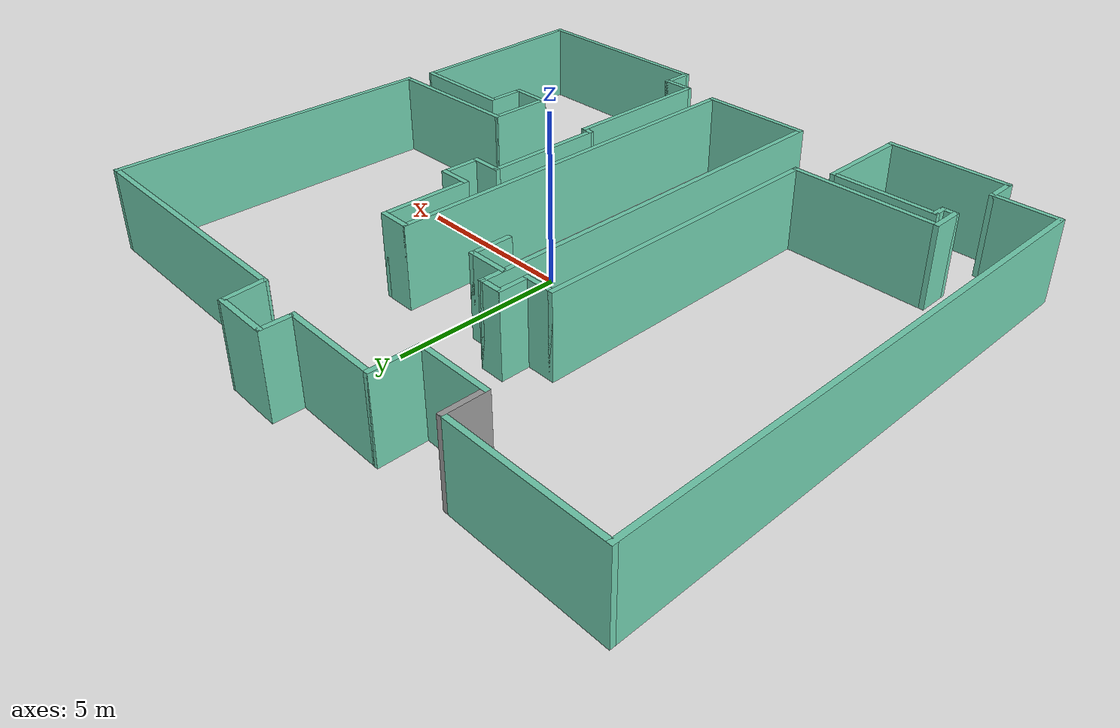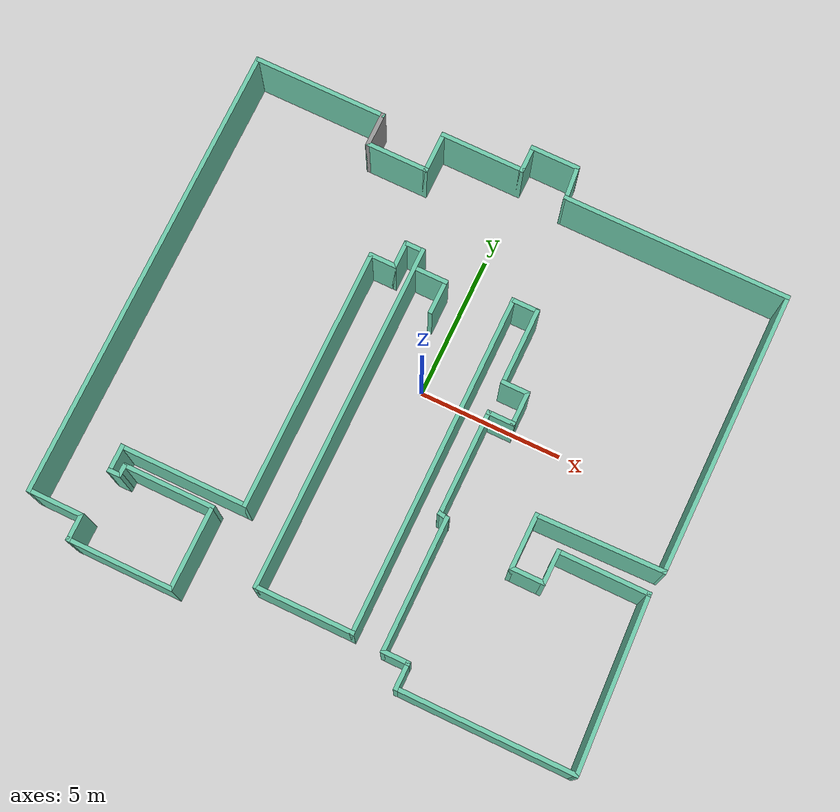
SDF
<?xml version='1.0'?>
<sdf version='1.6'>
  <model name='map_111'>
    <pose frame=''>0.024444 -0.501413 0 0 -0 0</pose>
    <link name='Wall_10'>
      <collision name='Wall_10_Collision'>
        <geometry>
          <box>
            <size>16.25 0.15 2.5</size>
          </box>
        </geometry>
        <pose frame=''>0 0 1.25 0 -0 0</pose>
      </collision>
      <visual name='Wall_10_Visual'>
        <pose frame=''>0 0 1.25 0 -0 0</pose>
        <geometry>
          <box>
            <size>16.25 0.15 2.5</size>
          </box>
        </geometry>
        <material>
          <script>
            <uri>file://media/materials/scripts/gazebo.material</uri>
            <name>Gazebo/Grey</name>
          </script>
          <ambient>0.435294 0.796078 0.67451 1</ambient>
        </material>
        <meta>
          <layer>0</layer>
        </meta>
      </visual>
      <pose frame=''>-9.60153 -0.128241 0 0 -0 -1.5708</pose>
    </link>
    <link name='Wall_15'>
      <collision name='Wall_15_Collision'>
        <geometry>
          <box>
            <size>10 0.15 2.5</size>
          </box>
        </geometry>
        <pose frame=''>0 0 1.25 0 -0 0</pose>
      </collision>
      <visual name='Wall_15_Visual'>
        <pose frame=''>0 0 1.25 0 -0 0</pose>
        <geometry>
          <box>
            <size>10 0.15 2.5</size>
          </box>
        </geometry>
        <material>
          <script>
            <uri>file://media/materials/scripts/gazebo.material</uri>
            <name>Gazebo/Grey</name>
          </script>
          <ambient>0.435294 0.796078 0.67451 1</ambient>
        </material>
        <meta>
          <layer>0</layer>
        </meta>
      </visual>
      <pose frame=''>9.49847 2.99676 0 0 -0 -1.5708</pose>
    </link>
    <link name='Wall_16'>
      <collision name='Wall_16_Collision'>
        <geometry>
          <box>
            <size>4.5 0.15 2.5</size>
          </box>
        </geometry>
        <pose frame=''>0 0 1.25 0 -0 0</pose>
      </collision>
      <visual name='Wall_16_Visual'>
        <pose frame=''>0 0 1.25 0 -0 0</pose>
        <geometry>
          <box>
            <size>4.5 0.15 2.5</size>
          </box>
        </geometry>
        <material>
          <script>
            <uri>file://media/materials/scripts/gazebo.material</uri>
            <name>Gazebo/Grey</name>
          </script>
          <ambient>0.435294 0.796078 0.67451 1</ambient>
        </material>
        <meta>
          <layer>0</layer>
        </meta>
      </visual>
      <pose frame=''>7.32347 -1.97477 0 0 -0 -3.12021</pose>
    </link>
    <link name='Wall_22'>
      <collision name='Wall_22_Collision'>
        <geometry>
          <box>
            <size>6.25 0.15 2.5</size>
          </box>
        </geometry>
        <pose frame=''>0 0 1.25 0 -0 0</pose>
      </collision>
      <visual name='Wall_22_Visual'>
        <pose frame=''>0 0 1.25 0 -0 0</pose>
        <geometry>
          <box>
            <size>6.25 0.15 2.5</size>
          </box>
        </geometry>
        <material>
          <script>
            <uri>file://media/materials/scripts/gazebo.material</uri>
            <name>Gazebo/Grey</name>
          </script>
          <ambient>0.435294 0.796078 0.67451 1</ambient>
        </material>
        <meta>
          <layer>0</layer>
        </meta>
      </visual>
      <pose frame=''>6.54847 -8.77824 0 0 -0 3.14159</pose>
    </link>
    <link name='Wall_23'>
      <collision name='Wall_23_Collision'>
        <geometry>
          <box>
            <size>1 0.15 2.5</size>
          </box>
        </geometry>
        <pose frame=''>0 0 1.25 0 -0 0</pose>
      </collision>
      <visual name='Wall_23_Visual'>
        <pose frame=''>0 0 1.25 0 -0 0</pose>
        <geometry>
          <box>
            <size>1 0.15 2.5</size>
          </box>
        </geometry>
        <material>
          <script>
            <uri>file://media/materials/scripts/gazebo.material</uri>
            <name>Gazebo/Grey</name>
          </script>
          <ambient>0.435294 0.796078 0.67451 1</ambient>
        </material>
        <meta>
          <layer>0</layer>
        </meta>
      </visual>
      <pose frame=''>3.49847 -8.35324 0 0 -0 1.5708</pose>
    </link>
    <link name='Wall_24'>
      <collision name='Wall_24_Collision'>
        <geometry>
          <box>
            <size>1 0.15 2.5</size>
          </box>
        </geometry>
        <pose frame=''>0 0 1.25 0 -0 0</pose>
      </collision>
      <visual name='Wall_24_Visual'>
        <pose frame=''>0 0 1.25 0 -0 0</pose>
        <geometry>
          <box>
            <size>1 0.15 2.5</size>
          </box>
        </geometry>
        <material>
          <script>
            <uri>file://media/materials/scripts/gazebo.material</uri>
            <name>Gazebo/Grey</name>
          </script>
          <ambient>0.435294 0.796078 0.67451 1</ambient>
        </material>
        <meta>
          <layer>0</layer>
        </meta>
      </visual>
      <pose frame=''>3.07347 -7.92824 0 0 -0 3.14159</pose>
    </link>
    <link name='Wall_25'>
      <collision name='Wall_25_Collision'>
        <geometry>
          <box>
            <size>4.75 0.15 2.5</size>
          </box>
        </geometry>
        <pose frame=''>0 0 1.25 0 -0 0</pose>
      </collision>
      <visual name='Wall_25_Visual'>
        <pose frame=''>0 0 1.25 0 -0 0</pose>
        <geometry>
          <box>
            <size>4.75 0.15 2.5</size>
          </box>
        </geometry>
        <material>
          <script>
            <uri>file://media/materials/scripts/gazebo.material</uri>
            <name>Gazebo/Grey</name>
          </script>
          <ambient>0.435294 0.796078 0.67451 1</ambient>
        </material>
        <meta>
          <layer>0</layer>
        </meta>
      </visual>
      <pose frame=''>2.64847 -5.62824 0 0 -0 1.5708</pose>
    </link>
    <link name='Wall_27'>
      <collision name='Wall_27_Collision'>
        <geometry>
          <box>
            <size>2 0.15 2.5</size>
          </box>
        </geometry>
        <pose frame=''>0 0 1.25 0 -0 0</pose>
      </collision>
      <visual name='Wall_27_Visual'>
        <pose frame=''>0 0 1.25 0 -0 0</pose>
        <geometry>
          <box>
            <size>2 0.15 2.5</size>
          </box>
        </geometry>
        <material>
          <script>
            <uri>file://media/materials/scripts/gazebo.material</uri>
            <name>Gazebo/Grey</name>
          </script>
          <ambient>0.435294 0.796078 0.67451 1</ambient>
        </material>
        <meta>
          <layer>0</layer>
        </meta>
      </visual>
      <pose frame=''>5.14847 -2.94629 0 0 -0 -1.5708</pose>
    </link>
    <link name='Wall_28'>
      <collision name='Wall_28_Collision'>
        <geometry>
          <box>
            <size>1.25 0.15 2.5</size>
          </box>
        </geometry>
        <pose frame=''>0 0 1.25 0 -0 0</pose>
      </collision>
      <visual name='Wall_28_Visual'>
        <pose frame=''>0 0 1.25 0 -0 0</pose>
        <geometry>
          <box>
            <size>1.25 0.15 2.5</size>
          </box>
        </geometry>
        <material>
          <script>
            <uri>file://media/materials/scripts/gazebo.material</uri>
            <name>Gazebo/Grey</name>
          </script>
          <ambient>0.435294 0.796078 0.67451 1</ambient>
        </material>
        <meta>
          <layer>0</layer>
        </meta>
      </visual>
      <pose frame=''>5.69847 -3.87129 0 0 -0 0</pose>
    </link>
    <link name='Wall_30'>
      <collision name='Wall_30_Collision'>
        <geometry>
          <box>
            <size>1.25 0.15 2.5</size>
          </box>
        </geometry>
        <pose frame=''>0 0 1.25 0 -0 0</pose>
      </collision>
      <visual name='Wall_30_Visual'>
        <pose frame=''>0 0 1.25 0 -0 0</pose>
        <geometry>
          <box>
            <size>1.25 0.15 2.5</size>
          </box>
        </geometry>
        <material>
          <script>
            <uri>file://media/materials/scripts/gazebo.material</uri>
            <name>Gazebo/Grey</name>
          </script>
          <ambient>0.435294 0.796078 0.67451 1</ambient>
        </material>
        <meta>
          <layer>0</layer>
        </meta>
      </visual>
      <pose frame=''>6.24847 -3.32129 0 0 -0 1.5708</pose>
    </link>
    <link name='Wall_31'>
      <collision name='Wall_31_Collision'>
        <geometry>
          <box>
            <size>3.25 0.15 2.5</size>
          </box>
        </geometry>
        <pose frame=''>0 0 1.25 0 -0 0</pose>
      </collision>
      <visual name='Wall_31_Visual'>
        <pose frame=''>0 0 1.25 0 -0 0</pose>
        <geometry>
          <box>
            <size>3.25 0.15 2.5</size>
          </box>
        </geometry>
        <material>
          <script>
            <uri>file://media/materials/scripts/gazebo.material</uri>
            <name>Gazebo/Grey</name>
          </script>
          <ambient>0.435294 0.796078 0.67451 1</ambient>
        </material>
        <meta>
          <layer>0</layer>
        </meta>
      </visual>
      <pose frame=''>7.79847 -2.77129 0 0 -0 0</pose>
    </link>
    <link name='Wall_33'>
      <collision name='Wall_33_Collision'>
        <geometry>
          <box>
            <size>6.16215 0.15 2.5</size>
          </box>
        </geometry>
        <pose frame=''>0 0 1.25 0 -0 0</pose>
      </collision>
      <visual name='Wall_33_Visual'>
        <pose frame=''>0 0 1.25 0 -0 0</pose>
        <geometry>
          <box>
            <size>6.16215 0.15 2.5</size>
          </box>
        </geometry>
        <material>
          <script>
            <uri>file://media/materials/scripts/gazebo.material</uri>
            <name>Gazebo/Grey</name>
          </script>
          <ambient>0.435294 0.796078 0.67451 1</ambient>
        </material>
        <meta>
          <layer>0</layer>
        </meta>
      </visual>
      <pose frame=''>9.47347 -5.77477 0 0 -0 1.61239</pose>
    </link>
    <link name='Wall_35'>
      <collision name='Wall_35_Collision'>
        <geometry>
          <box>
            <size>2 0.15 2.5</size>
          </box>
        </geometry>
        <pose frame=''>0 0 1.25 0 -0 0</pose>
      </collision>
      <visual name='Wall_35_Visual'>
        <pose frame=''>0 0 1.25 0 -0 0</pose>
        <geometry>
          <box>
            <size>2 0.15 2.5</size>
          </box>
        </geometry>
        <material>
          <script>
            <uri>file://media/materials/scripts/gazebo.material</uri>
            <name>Gazebo/Grey</name>
          </script>
          <ambient>0.435294 0.796078 0.67451 1</ambient>
        </material>
        <meta>
          <layer>0</layer>
        </meta>
      </visual>
      <pose frame=''>-8.67653 -8.17824 0 0 -0 0</pose>
    </link>
    <link name='Wall_36'>
      <collision name='Wall_36_Collision'>
        <geometry>
          <box>
            <size>1 0.15 2.5</size>
          </box>
        </geometry>
        <pose frame=''>0 0 1.25 0 -0 0</pose>
      </collision>
      <visual name='Wall_36_Visual'>
        <pose frame=''>0 0 1.25 0 -0 0</pose>
        <geometry>
          <box>
            <size>1 0.15 2.5</size>
          </box>
        </geometry>
        <material>
          <script>
            <uri>file://media/materials/scripts/gazebo.material</uri>
            <name>Gazebo/Grey</name>
          </script>
          <ambient>0.435294 0.796078 0.67451 1</ambient>
        </material>
        <meta>
          <layer>0</layer>
        </meta>
      </visual>
      <pose frame=''>-7.75153 -8.60324 0 0 -0 -1.5708</pose>
    </link>
    <link name='Wall_37'>
      <collision name='Wall_37_Collision'>
        <geometry>
          <box>
            <size>3.75 0.15 2.5</size>
          </box>
        </geometry>
        <pose frame=''>0 0 1.25 0 -0 0</pose>
      </collision>
      <visual name='Wall_37_Visual'>
        <pose frame=''>0 0 1.25 0 -0 0</pose>
        <geometry>
          <box>
            <size>3.75 0.15 2.5</size>
          </box>
        </geometry>
        <material>
          <script>
            <uri>file://media/materials/scripts/gazebo.material</uri>
            <name>Gazebo/Grey</name>
          </script>
          <ambient>0.435294 0.796078 0.67451 1</ambient>
        </material>
        <meta>
          <layer>0</layer>
        </meta>
      </visual>
      <pose frame=''>-5.95153 -9.02824 0 0 -0 0</pose>
    </link>
    <link name='Wall_38'>
      <collision name='Wall_38_Collision'>
        <geometry>
          <box>
            <size>3 0.15 2.5</size>
          </box>
        </geometry>
        <pose frame=''>0 0 1.25 0 -0 0</pose>
      </collision>
      <visual name='Wall_38_Visual'>
        <pose frame=''>0 0 1.25 0 -0 0</pose>
        <geometry>
          <box>
            <size>3 0.15 2.5</size>
          </box>
        </geometry>
        <material>
          <script>
            <uri>file://media/materials/scripts/gazebo.material</uri>
            <name>Gazebo/Grey</name>
          </script>
          <ambient>0.435294 0.796078 0.67451 1</ambient>
        </material>
        <meta>
          <layer>0</layer>
        </meta>
      </visual>
      <pose frame=''>-4.15153 -7.60324 0 0 -0 1.5708</pose>
    </link>
    <link name='Wall_39'>
      <collision name='Wall_39_Collision'>
        <geometry>
          <box>
            <size>3.25 0.15 2.5</size>
          </box>
        </geometry>
        <pose frame=''>0 0 1.25 0 -0 0</pose>
      </collision>
      <visual name='Wall_39_Visual'>
        <pose frame=''>0 0 1.25 0 -0 0</pose>
        <geometry>
          <box>
            <size>3.25 0.15 2.5</size>
          </box>
        </geometry>
        <material>
          <script>
            <uri>file://media/materials/scripts/gazebo.material</uri>
            <name>Gazebo/Grey</name>
          </script>
          <ambient>0.435294 0.796078 0.67451 1</ambient>
        </material>
        <meta>
          <layer>0</layer>
        </meta>
      </visual>
      <pose frame=''>-5.70153 -6.17824 0 0 -0 3.14159</pose>
    </link>
    <link name='Wall_40'>
      <collision name='Wall_40_Collision'>
        <geometry>
          <box>
            <size>0.5 0.15 2.5</size>
          </box>
        </geometry>
        <pose frame=''>0 0 1.25 0 -0 0</pose>
      </collision>
      <visual name='Wall_40_Visual'>
        <pose frame=''>0 0 1.25 0 -0 0</pose>
        <geometry>
          <box>
            <size>0.5 0.15 2.5</size>
          </box>
        </geometry>
        <material>
          <script>
            <uri>file://media/materials/scripts/gazebo.material</uri>
            <name>Gazebo/Grey</name>
          </script>
          <ambient>0.435294 0.796078 0.67451 1</ambient>
        </material>
        <meta>
          <layer>0</layer>
        </meta>
      </visual>
      <pose frame=''>-7.25153 -6.35324 0 0 -0 -1.5708</pose>
    </link>
    <link name='Wall_41'>
      <collision name='Wall_41_Collision'>
        <geometry>
          <box>
            <size>0.5 0.15 2.5</size>
          </box>
        </geometry>
        <pose frame=''>0 0 1.25 0 -0 0</pose>
      </collision>
      <visual name='Wall_41_Visual'>
        <pose frame=''>0 0 1.25 0 -0 0</pose>
        <geometry>
          <box>
            <size>0.5 0.15 2.5</size>
          </box>
        </geometry>
        <material>
          <script>
            <uri>file://media/materials/scripts/gazebo.material</uri>
            <name>Gazebo/Grey</name>
          </script>
          <ambient>0.435294 0.796078 0.67451 1</ambient>
        </material>
        <meta>
          <layer>0</layer>
        </meta>
      </visual>
      <pose frame=''>-7.42653 -6.52824 0 0 -0 3.14159</pose>
    </link>
    <link name='Wall_42'>
      <collision name='Wall_42_Collision'>
        <geometry>
          <box>
            <size>1 0.15 2.5</size>
          </box>
        </geometry>
        <pose frame=''>0 0 1.25 0 -0 0</pose>
      </collision>
      <visual name='Wall_42_Visual'>
        <pose frame=''>0 0 1.25 0 -0 0</pose>
        <geometry>
          <box>
            <size>1 0.15 2.5</size>
          </box>
        </geometry>
        <material>
          <script>
            <uri>file://media/materials/scripts/gazebo.material</uri>
            <name>Gazebo/Grey</name>
          </script>
          <ambient>0.435294 0.796078 0.67451 1</ambient>
        </material>
        <meta>
          <layer>0</layer>
        </meta>
      </visual>
      <pose frame=''>-7.60153 -6.10324 0 0 -0 1.5708</pose>
    </link>
    <link name='Wall_43'>
      <collision name='Wall_43_Collision'>
        <geometry>
          <box>
            <size>4.5 0.15 2.5</size>
          </box>
        </geometry>
        <pose frame=''>0 0 1.25 0 -0 0</pose>
      </collision>
      <visual name='Wall_43_Visual'>
        <pose frame=''>0 0 1.25 0 -0 0</pose>
        <geometry>
          <box>
            <size>4.5 0.15 2.5</size>
          </box>
        </geometry>
        <material>
          <script>
            <uri>file://media/materials/scripts/gazebo.material</uri>
            <name>Gazebo/Grey</name>
          </script>
          <ambient>0.435294 0.796078 0.67451 1</ambient>
        </material>
        <meta>
          <layer>0</layer>
        </meta>
      </visual>
      <pose frame=''>-5.42653 -5.67824 0 0 -0 0</pose>
    </link>
    <link name='Wall_44'>
      <collision name='Wall_44_Collision'>
        <geometry>
          <box>
            <size>9.25 0.15 2.5</size>
          </box>
        </geometry>
        <pose frame=''>0 0 1.25 0 -0 0</pose>
      </collision>
      <visual name='Wall_44_Visual'>
        <pose frame=''>0 0 1.25 0 -0 0</pose>
        <geometry>
          <box>
            <size>9.25 0.15 2.5</size>
          </box>
        </geometry>
        <material>
          <script>
            <uri>file://media/materials/scripts/gazebo.material</uri>
            <name>Gazebo/Grey</name>
          </script>
          <ambient>0.435294 0.796078 0.67451 1</ambient>
        </material>
        <meta>
          <layer>0</layer>
        </meta>
      </visual>
      <pose frame=''>-3.25153 -1.12824 0 0 -0 1.5708</pose>
    </link>
    <link name='Wall_45'>
      <collision name='Wall_45_Collision'>
        <geometry>
          <box>
            <size>1 0.15 2.5</size>
          </box>
        </geometry>
        <pose frame=''>0 0 1.25 0 -0 0</pose>
      </collision>
      <visual name='Wall_45_Visual'>
        <pose frame=''>0 0 1.25 0 -0 0</pose>
        <geometry>
          <box>
            <size>1 0.15 2.5</size>
          </box>
        </geometry>
        <material>
          <script>
            <uri>file://media/materials/scripts/gazebo.material</uri>
            <name>Gazebo/Grey</name>
          </script>
          <ambient>0.435294 0.796078 0.67451 1</ambient>
        </material>
        <meta>
          <layer>0</layer>
        </meta>
      </visual>
      <pose frame=''>-2.82653 3.42176 0 0 -0 0</pose>
    </link>
    <link name='Wall_46'>
      <collision name='Wall_46_Collision'>
        <geometry>
          <box>
            <size>1 0.15 2.5</size>
          </box>
        </geometry>
        <pose frame=''>0 0 1.25 0 -0 0</pose>
      </collision>
      <visual name='Wall_46_Visual'>
        <pose frame=''>0 0 1.25 0 -0 0</pose>
        <geometry>
          <box>
            <size>1 0.15 2.5</size>
          </box>
        </geometry>
        <material>
          <script>
            <uri>file://media/materials/scripts/gazebo.material</uri>
            <name>Gazebo/Grey</name>
          </script>
          <ambient>0.435294 0.796078 0.67451 1</ambient>
        </material>
        <meta>
          <layer>0</layer>
        </meta>
      </visual>
      <pose frame=''>-2.40153 3.84676 0 0 -0 1.5708</pose>
    </link>
    <link name='Wall_47'>
      <collision name='Wall_47_Collision'>
        <geometry>
          <box>
            <size>0.75 0.15 2.5</size>
          </box>
        </geometry>
        <pose frame=''>0 0 1.25 0 -0 0</pose>
      </collision>
      <visual name='Wall_47_Visual'>
        <pose frame=''>0 0 1.25 0 -0 0</pose>
        <geometry>
          <box>
            <size>0.75 0.15 2.5</size>
          </box>
        </geometry>
        <material>
          <script>
            <uri>file://media/materials/scripts/gazebo.material</uri>
            <name>Gazebo/Grey</name>
          </script>
          <ambient>0.435294 0.796078 0.67451 1</ambient>
        </material>
        <meta>
          <layer>0</layer>
        </meta>
      </visual>
      <pose frame=''>-2.10153 4.27176 0 0 -0 0</pose>
    </link>
    <link name='Wall_48'>
      <collision name='Wall_48_Collision'>
        <geometry>
          <box>
            <size>12.25 0.15 2.5</size>
          </box>
        </geometry>
        <pose frame=''>0 0 1.25 0 -0 0</pose>
      </collision>
      <visual name='Wall_48_Visual'>
        <pose frame=''>0 0 1.25 0 -0 0</pose>
        <geometry>
          <box>
            <size>12.25 0.15 2.5</size>
          </box>
        </geometry>
        <material>
          <script>
            <uri>file://media/materials/scripts/gazebo.material</uri>
            <name>Gazebo/Grey</name>
          </script>
          <ambient>0.435294 0.796078 0.67451 1</ambient>
        </material>
        <meta>
          <layer>0</layer>
        </meta>
      </visual>
      <pose frame=''>-1.80153 -1.77824 0 0 -0 -1.5708</pose>
    </link>
    <link name='Wall_49'>
      <collision name='Wall_49_Collision'>
        <geometry>
          <box>
            <size>3.5 0.15 2.5</size>
          </box>
        </geometry>
        <pose frame=''>0 0 1.25 0 -0 0</pose>
      </collision>
      <visual name='Wall_49_Visual'>
        <pose frame=''>0 0 1.25 0 -0 0</pose>
        <geometry>
          <box>
            <size>3.5 0.15 2.5</size>
          </box>
        </geometry>
        <material>
          <script>
            <uri>file://media/materials/scripts/gazebo.material</uri>
            <name>Gazebo/Grey</name>
          </script>
          <ambient>0.435294 0.796078 0.67451 1</ambient>
        </material>
        <meta>
          <layer>0</layer>
        </meta>
      </visual>
      <pose frame=''>-0.126526 -7.82824 0 0 -0 0</pose>
    </link>
    <link name='Wall_50'>
      <collision name='Wall_50_Collision'>
        <geometry>
          <box>
            <size>12 0.15 2.5</size>
          </box>
        </geometry>
        <pose frame=''>0 0 1.25 0 -0 0</pose>
      </collision>
      <visual name='Wall_50_Visual'>
        <pose frame=''>0 0 1.25 0 -0 0</pose>
        <geometry>
          <box>
            <size>12 0.15 2.5</size>
          </box>
        </geometry>
        <material>
          <script>
            <uri>file://media/materials/scripts/gazebo.material</uri>
            <name>Gazebo/Grey</name>
          </script>
          <ambient>0.435294 0.796078 0.67451 1</ambient>
        </material>
        <meta>
          <layer>0</layer>
        </meta>
      </visual>
      <pose frame=''>1.54847 -1.90324 0 0 -0 1.5708</pose>
    </link>
    <link name='Wall_53'>
      <collision name='Wall_53_Collision'>
        <geometry>
          <box>
            <size>1 0.15 2.5</size>
          </box>
        </geometry>
        <pose frame=''>0 0 1.25 0 -0 0</pose>
      </collision>
      <visual name='Wall_53_Visual'>
        <pose frame=''>0 0 1.25 0 -0 0</pose>
        <geometry>
          <box>
            <size>1 0.15 2.5</size>
          </box>
        </geometry>
        <material>
          <script>
            <uri>file://media/materials/scripts/gazebo.material</uri>
            <name>Gazebo/Grey</name>
          </script>
          <ambient>0.435294 0.796078 0.67451 1</ambient>
        </material>
        <meta>
          <layer>0</layer>
        </meta>
      </visual>
      <pose frame=''>1.97347 4.02176 0 0 -0 0</pose>
    </link>
    <link name='Wall_54'>
      <collision name='Wall_54_Collision'>
        <geometry>
          <box>
            <size>2.75 0.15 2.5</size>
          </box>
        </geometry>
        <pose frame=''>0 0 1.25 0 -0 0</pose>
      </collision>
      <visual name='Wall_54_Visual'>
        <pose frame=''>0 0 1.25 0 -0 0</pose>
        <geometry>
          <box>
            <size>2.75 0.15 2.5</size>
          </box>
        </geometry>
        <material>
          <script>
            <uri>file://media/materials/scripts/gazebo.material</uri>
            <name>Gazebo/Grey</name>
          </script>
          <ambient>0.435294 0.796078 0.67451 1</ambient>
        </material>
        <meta>
          <layer>0</layer>
        </meta>
      </visual>
      <pose frame=''>2.39847 2.72176 0 0 -0 -1.5708</pose>
    </link>
    <link name='Wall_55'>
      <collision name='Wall_55_Collision'>
        <geometry>
          <box>
            <size>1 0.15 2.5</size>
          </box>
        </geometry>
        <pose frame=''>0 0 1.25 0 -0 0</pose>
      </collision>
      <visual name='Wall_55_Visual'>
        <pose frame=''>0 0 1.25 0 -0 0</pose>
        <geometry>
          <box>
            <size>1 0.15 2.5</size>
          </box>
        </geometry>
        <material>
          <script>
            <uri>file://media/materials/scripts/gazebo.material</uri>
            <name>Gazebo/Grey</name>
          </script>
          <ambient>0.435294 0.796078 0.67451 1</ambient>
        </material>
        <meta>
          <layer>0</layer>
        </meta>
      </visual>
      <pose frame=''>2.82347 1.42176 0 0 -0 0</pose>
    </link>
    <link name='Wall_56'>
      <collision name='Wall_56_Collision'>
        <geometry>
          <box>
            <size>1.25 0.15 2.5</size>
          </box>
        </geometry>
        <pose frame=''>0 0 1.25 0 -0 0</pose>
      </collision>
      <visual name='Wall_56_Visual'>
        <pose frame=''>0 0 1.25 0 -0 0</pose>
        <geometry>
          <box>
            <size>1.25 0.15 2.5</size>
          </box>
        </geometry>
        <material>
          <script>
            <uri>file://media/materials/scripts/gazebo.material</uri>
            <name>Gazebo/Grey</name>
          </script>
          <ambient>0.435294 0.796078 0.67451 1</ambient>
        </material>
        <meta>
          <layer>0</layer>
        </meta>
      </visual>
      <pose frame=''>3.24847 0.871759 0 0 -0 -1.5708</pose>
    </link>
    <link name='Wall_57'>
      <collision name='Wall_57_Collision'>
        <geometry>
          <box>
            <size>1 0.15 2.5</size>
          </box>
        </geometry>
        <pose frame=''>0 0 1.25 0 -0 0</pose>
      </collision>
      <visual name='Wall_57_Visual'>
        <pose frame=''>0 0 1.25 0 -0 0</pose>
        <geometry>
          <box>
            <size>1 0.15 2.5</size>
          </box>
        </geometry>
        <material>
          <script>
            <uri>file://media/materials/scripts/gazebo.material</uri>
            <name>Gazebo/Grey</name>
          </script>
          <ambient>0.435294 0.796078 0.67451 1</ambient>
        </material>
        <meta>
          <layer>0</layer>
        </meta>
      </visual>
      <pose frame=''>2.82347 0.321759 0 0 -0 3.14159</pose>
    </link>
    <link name='Wall_58'>
      <collision name='Wall_58_Collision'>
        <geometry>
          <box>
            <size>3.75 0.15 2.5</size>
          </box>
        </geometry>
        <pose frame=''>0 0 1.25 0 -0 0</pose>
      </collision>
      <visual name='Wall_58_Visual'>
        <pose frame=''>0 0 1.25 0 -0 0</pose>
        <geometry>
          <box>
            <size>3.75 0.15 2.5</size>
          </box>
        </geometry>
        <material>
          <script>
            <uri>file://media/materials/scripts/gazebo.material</uri>
            <name>Gazebo/Grey</name>
          </script>
          <ambient>0.435294 0.796078 0.67451 1</ambient>
        </material>
        <meta>
          <layer>0</layer>
        </meta>
      </visual>
      <pose frame=''>2.39847 -1.47824 0 0 -0 -1.5708</pose>
    </link>
    <link name='Wall_59'>
      <collision name='Wall_59_Collision'>
        <geometry>
          <box>
            <size>0.404951 0.15 2.5</size>
          </box>
        </geometry>
        <pose frame=''>0 0 1.25 0 -0 0</pose>
      </collision>
      <visual name='Wall_59_Visual'>
        <pose frame=''>0 0 1.25 0 -0 0</pose>
        <geometry>
          <box>
            <size>0.404951 0.15 2.5</size>
          </box>
        </geometry>
        <material>
          <script>
            <uri>file://media/materials/scripts/gazebo.material</uri>
            <name>Gazebo/Grey</name>
          </script>
          <ambient>0.435294 0.796078 0.67451 1</ambient>
        </material>
        <meta>
          <layer>0</layer>
        </meta>
      </visual>
      <pose frame=''>2.52347 -3.30324 0 0 -0 -0.197396</pose>
    </link>
    <link name='Wall_61'>
      <collision name='Wall_61_Collision'>
        <geometry>
          <box>
            <size>1.25 0.15 2.5</size>
          </box>
        </geometry>
        <pose frame=''>0 0 1.25 0 -0 0</pose>
      </collision>
      <visual name='Wall_61_Visual'>
        <pose frame=''>0 0 1.25 0 -0 0</pose>
        <geometry>
          <box>
            <size>1.25 0.15 2.5</size>
          </box>
        </geometry>
        <material>
          <script>
            <uri>file://media/materials/scripts/gazebo.material</uri>
            <name>Gazebo/Grey</name>
          </script>
          <ambient>0.435294 0.796078 0.67451 1</ambient>
        </material>
        <meta>
          <layer>0</layer>
        </meta>
      </visual>
      <pose frame=''>-1.23551 3.64156 0 0 -0 0</pose>
    </link>
    <link name='Wall_62'>
      <collision name='Wall_62_Collision'>
        <geometry>
          <box>
            <size>1.25 0.15 2.5</size>
          </box>
        </geometry>
        <pose frame=''>0 0 1.25 0 -0 0</pose>
      </collision>
      <visual name='Wall_62_Visual'>
        <pose frame=''>0 0 1.25 0 -0 0</pose>
        <geometry>
          <box>
            <size>1.25 0.15 2.5</size>
          </box>
        </geometry>
        <material>
          <script>
            <uri>file://media/materials/scripts/gazebo.material</uri>
            <name>Gazebo/Grey</name>
          </script>
          <ambient>0.435294 0.796078 0.67451 1</ambient>
        </material>
        <meta>
          <layer>0</layer>
        </meta>
      </visual>
      <pose frame=''>-0.685509 3.09156 0 0 -0 -1.5708</pose>
    </link>
    <link name='Wall_64'>
      <collision name='Wall_64_Collision'>
        <geometry>
          <box>
            <size>4.75 0.15 2.5</size>
          </box>
        </geometry>
        <pose frame=''>0 0 1.25 0 -0 0</pose>
      </collision>
      <visual name='Wall_64_Visual'>
        <pose frame=''>0 0 1.25 0 -0 0</pose>
        <geometry>
          <box>
            <size>4.75 0.15 2.5</size>
          </box>
        </geometry>
        <material>
          <script>
            <uri>file://media/materials/scripts/gazebo.material</uri>
            <name>Gazebo/Grey</name>
          </script>
          <ambient>0.435294 0.796078 0.67451 1</ambient>
        </material>
        <meta>
          <layer>0</layer>
        </meta>
      </visual>
      <pose frame=''>-7.30153 7.92176 0 0 -0 0</pose>
    </link>
    <link name='Wall_65'>
      <collision name='Wall_65_Collision'>
        <geometry>
          <box>
            <size>1.25 0.15 2.5</size>
          </box>
        </geometry>
        <pose frame=''>0 0 1.25 0 -0 0</pose>
      </collision>
      <visual name='Wall_65_Visual'>
        <pose frame=''>0 0 1.25 0 -0 0</pose>
        <geometry>
          <box>
            <size>1.25 0.15 2.5</size>
          </box>
        </geometry>
        <material>
          <script>
            <uri>file://media/materials/scripts/gazebo.material</uri>
            <name>Gazebo/Grey</name>
          </script>
          <ambient>1 1 1 1</ambient>
        </material>
        <meta>
          <layer>0</layer>
        </meta>
      </visual>
      <pose frame=''>-5.00153 7.37176 0 0 -0 -1.5708</pose>
    </link>
    <link name='Wall_66'>
      <collision name='Wall_66_Collision'>
        <geometry>
          <box>
            <size>2.25 0.15 2.5</size>
          </box>
        </geometry>
        <pose frame=''>0 0 1.25 0 -0 0</pose>
      </collision>
      <visual name='Wall_66_Visual'>
        <pose frame=''>0 0 1.25 0 -0 0</pose>
        <geometry>
          <box>
            <size>2.25 0.15 2.5</size>
          </box>
        </geometry>
        <material>
          <script>
            <uri>file://media/materials/scripts/gazebo.material</uri>
            <name>Gazebo/Grey</name>
          </script>
          <ambient>0.435294 0.796078 0.67451 1</ambient>
        </material>
        <meta>
          <layer>0</layer>
        </meta>
      </visual>
      <pose frame=''>-3.95153 6.82176 0 0 -0 0</pose>
    </link>
    <link name='Wall_67'>
      <collision name='Wall_67_Collision'>
        <geometry>
          <box>
            <size>1.5 0.15 2.5</size>
          </box>
        </geometry>
        <pose frame=''>0 0 1.25 0 -0 0</pose>
      </collision>
      <visual name='Wall_67_Visual'>
        <pose frame=''>0 0 1.25 0 -0 0</pose>
        <geometry>
          <box>
            <size>1.5 0.15 2.5</size>
          </box>
        </geometry>
        <material>
          <script>
            <uri>file://media/materials/scripts/gazebo.material</uri>
            <name>Gazebo/Grey</name>
          </script>
          <ambient>0.435294 0.796078 0.67451 1</ambient>
        </material>
        <meta>
          <layer>0</layer>
        </meta>
      </visual>
      <pose frame=''>-2.90153 7.49676 0 0 -0 1.5708</pose>
    </link>
    <link name='Wall_68'>
      <collision name='Wall_68_Collision'>
        <geometry>
          <box>
            <size>3 0.15 2.5</size>
          </box>
        </geometry>
        <pose frame=''>0 0 1.25 0 -0 0</pose>
      </collision>
      <visual name='Wall_68_Visual'>
        <pose frame=''>0 0 1.25 0 -0 0</pose>
        <geometry>
          <box>
            <size>3 0.15 2.5</size>
          </box>
        </geometry>
        <material>
          <script>
            <uri>file://media/materials/scripts/gazebo.material</uri>
            <name>Gazebo/Grey</name>
          </script>
          <ambient>0.435294 0.796078 0.67451 1</ambient>
        </material>
        <meta>
          <layer>0</layer>
        </meta>
      </visual>
      <pose frame=''>-1.47653 8.17176 0 0 -0 0</pose>
    </link>
    <link name='Wall_69'>
      <collision name='Wall_69_Collision'>
        <geometry>
          <box>
            <size>1 0.15 2.5</size>
          </box>
        </geometry>
        <pose frame=''>0 0 1.25 0 -0 0</pose>
      </collision>
      <visual name='Wall_69_Visual'>
        <pose frame=''>0 0 1.25 0 -0 0</pose>
        <geometry>
          <box>
            <size>1 0.15 2.5</size>
          </box>
        </geometry>
        <material>
          <script>
            <uri>file://media/materials/scripts/gazebo.material</uri>
            <name>Gazebo/Grey</name>
          </script>
          <ambient>0.435294 0.796078 0.67451 1</ambient>
        </material>
        <meta>
          <layer>0</layer>
        </meta>
      </visual>
      <pose frame=''>-0.051526 8.59676 0 0 -0 1.5708</pose>
    </link>
    <link name='Wall_70'>
      <collision name='Wall_70_Collision'>
        <geometry>
          <box>
            <size>1.75 0.15 2.5</size>
          </box>
        </geometry>
        <pose frame=''>0 0 1.25 0 -0 0</pose>
      </collision>
      <visual name='Wall_70_Visual'>
        <pose frame=''>0 0 1.25 0 -0 0</pose>
        <geometry>
          <box>
            <size>1.75 0.15 2.5</size>
          </box>
        </geometry>
        <material>
          <script>
            <uri>file://media/materials/scripts/gazebo.material</uri>
            <name>Gazebo/Grey</name>
          </script>
          <ambient>0.435294 0.796078 0.67451 1</ambient>
        </material>
        <meta>
          <layer>0</layer>
        </meta>
      </visual>
      <pose frame=''>0.748474 9.02176 0 0 -0 0</pose>
    </link>
    <link name='Wall_73'>
      <collision name='Wall_73_Collision'>
        <geometry>
          <box>
            <size>8 0.15 2.5</size>
          </box>
        </geometry>
        <pose frame=''>0 0 1.25 0 -0 0</pose>
      </collision>
      <visual name='Wall_73_Visual'>
        <pose frame=''>0 0 1.25 0 -0 0</pose>
        <geometry>
          <box>
            <size>8 0.15 2.5</size>
          </box>
        </geometry>
        <material>
          <script>
            <uri>file://media/materials/scripts/gazebo.material</uri>
            <name>Gazebo/Grey</name>
          </script>
          <ambient>0.435294 0.796078 0.67451 1</ambient>
        </material>
        <meta>
          <layer>0</layer>
        </meta>
      </visual>
      <pose frame=''>5.57347 7.92176 0 0 -0 3.14159</pose>
    </link>
    <link name='Wall_74'>
      <collision name='Wall_74_Collision'>
        <geometry>
          <box>
            <size>1.25454 0.15 2.5</size>
          </box>
        </geometry>
        <pose frame=''>0 0 1.25 0 -0 0</pose>
      </collision>
      <visual name='Wall_74_Visual'>
        <pose frame=''>0 0 1.25 0 -0 0</pose>
        <geometry>
          <box>
            <size>1.25454 0.15 2.5</size>
          </box>
        </geometry>
        <material>
          <script>
            <uri>file://media/materials/scripts/gazebo.material</uri>
            <name>Gazebo/Grey</name>
          </script>
          <ambient>0.435294 0.796078 0.67451 1</ambient>
        </material>
        <meta>
          <layer>0</layer>
        </meta>
      </visual>
      <pose frame=''>1.59847 8.47176 0 0 -0 1.66146</pose>
    </link>
    <static>1</static>
  </model>
</sdf>
